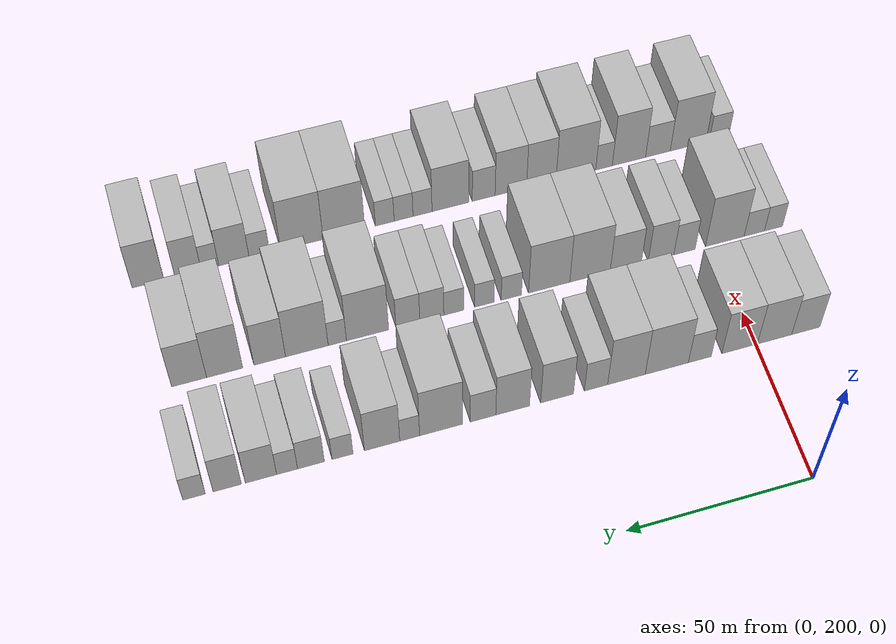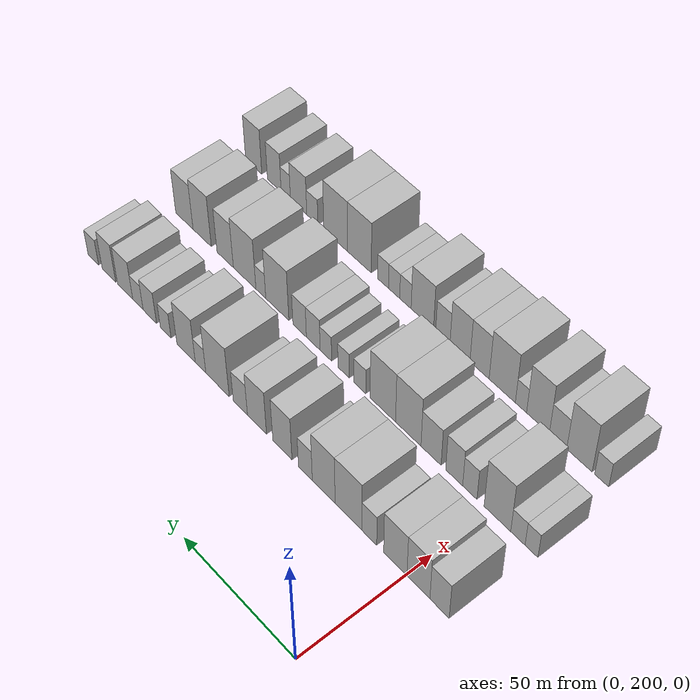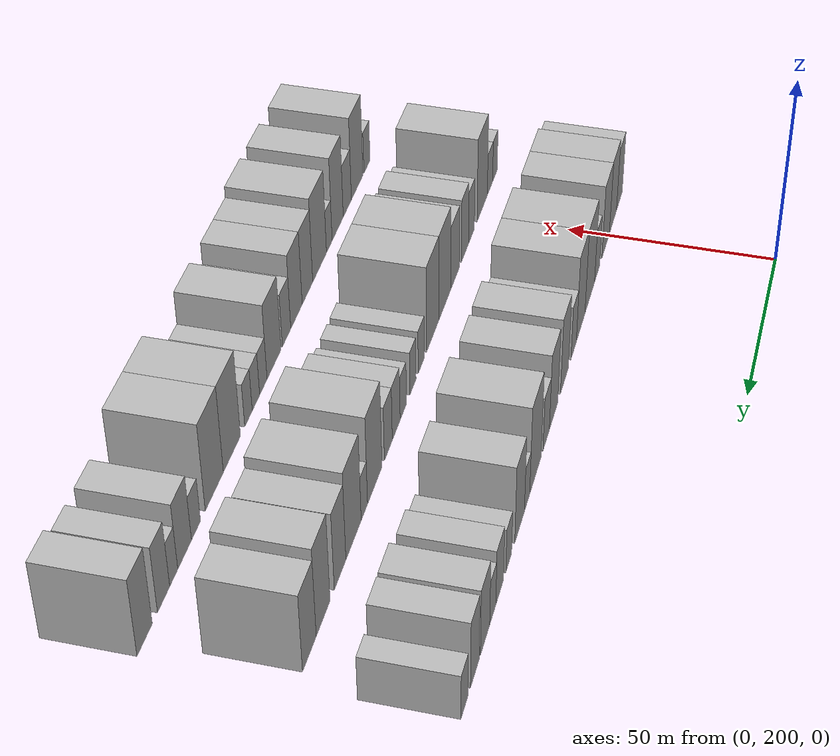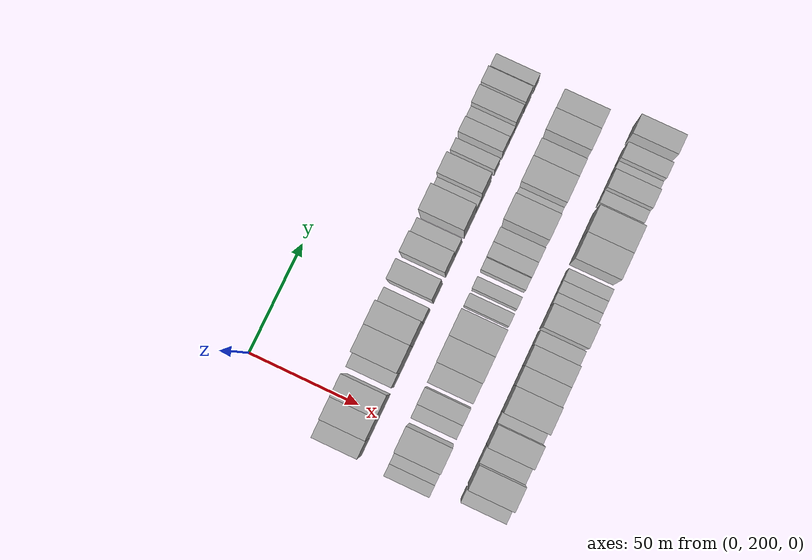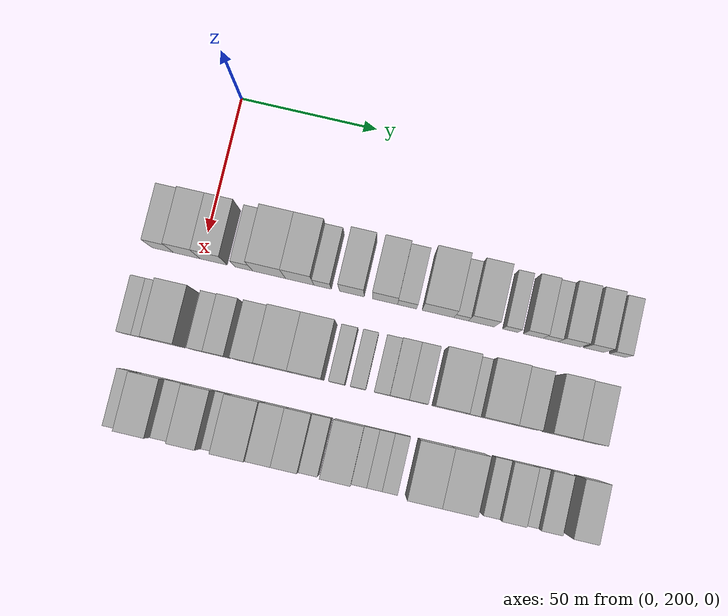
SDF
<sdf version="1.6">
 <world name="default">
  <model name="building_62">
   <static>1</static>
   <pose>50.0000 185.9678 0 0.000000 0.000000 0.000000</pose>
   <link name="link">
    <pose>0 0 9.00 0 0 0</pose>
    <collision name="collision"><geometry><box><size>20.0000 7.9779 18.0000</size></box></geometry></collision>
    <visual name="visual">
     <cast_shadows>0</cast_shadows>
     <geometry><box><size>20.0000 7.9779 18.0000</size></box></geometry>
     <material>
      <script>
       <uri>model://HANNAS_wall/materials/scripts</uri>
       <uri>model://HANNAS_wall/materials/textures</uri>
       <name>vrc/HANNAS_wall</name>
      </script>
     </material>
    </visual>
   </link>
  </model>
  <model name="building_63">
   <static>1</static>
   <pose>50.0000 194.7788 0 0.000000 0.000000 0.000000</pose>
   <link name="link">
    <pose>0 0 10.50 0 0 0</pose>
    <collision name="collision"><geometry><box><size>20.0000 9.6440 21.0000</size></box></geometry></collision>
    <visual name="visual">
     <cast_shadows>0</cast_shadows>
     <geometry><box><size>20.0000 9.6440 21.0000</size></box></geometry>
     <material>
      <script>
       <uri>model://HANNAS_wall/materials/scripts</uri>
       <uri>model://HANNAS_wall/materials/textures</uri>
       <name>vrc/HANNAS_wall</name>
      </script>
     </material>
    </visual>
   </link>
  </model>
  <model name="building_64">
   <static>1</static>
   <pose>50.0000 204.5723 0 0.000000 0.000000 0.000000</pose>
   <link name="link">
    <pose>0 0 10.50 0 0 0</pose>
    <collision name="collision"><geometry><box><size>20.0000 9.9431 21.0000</size></box></geometry></collision>
    <visual name="visual">
     <cast_shadows>0</cast_shadows>
     <geometry><box><size>20.0000 9.9431 21.0000</size></box></geometry>
     <material>
      <script>
       <uri>model://HANNAS_wall/materials/scripts</uri>
       <uri>model://HANNAS_wall/materials/textures</uri>
       <name>vrc/HANNAS_wall</name>
      </script>
     </material>
    </visual>
   </link>
  </model>
  <model name="building_65">
   <static>1</static>
   <pose>50.0000 215.7253 0 0.000000 0.000000 0.000000</pose>
   <link name="link">
    <pose>0 0 7.50 0 0 0</pose>
    <collision name="collision"><geometry><box><size>20.0000 6.3628 15.0000</size></box></geometry></collision>
    <visual name="visual">
     <cast_shadows>0</cast_shadows>
     <geometry><box><size>20.0000 6.3628 15.0000</size></box></geometry>
     <material>
      <script>
       <uri>model://HANNAS_wall/materials/scripts</uri>
       <uri>model://HANNAS_wall/materials/textures</uri>
       <name>vrc/HANNAS_wall</name>
      </script>
     </material>
    </visual>
   </link>
  </model>
  <model name="building_66">
   <static>1</static>
   <pose>50.0000 224.8831 0 0.000000 0.000000 0.000000</pose>
   <link name="link">
    <pose>0 0 12.00 0 0 0</pose>
    <collision name="collision"><geometry><box><size>20.0000 11.9528 24.0000</size></box></geometry></collision>
    <visual name="visual">
     <cast_shadows>0</cast_shadows>
     <geometry><box><size>20.0000 11.9528 24.0000</size></box></geometry>
     <material>
      <script>
       <uri>model://HANNAS_wall/materials/scripts</uri>
       <uri>model://HANNAS_wall/materials/textures</uri>
       <name>vrc/HANNAS_wall</name>
      </script>
     </material>
    </visual>
   </link>
  </model>
  <model name="building_67">
   <static>1</static>
   <pose>50.0000 236.0277 0 0.000000 0.000000 0.000000</pose>
   <link name="link">
    <pose>0 0 12.00 0 0 0</pose>
    <collision name="collision"><geometry><box><size>20.0000 10.3364 24.0000</size></box></geometry></collision>
    <visual name="visual">
     <cast_shadows>0</cast_shadows>
     <geometry><box><size>20.0000 10.3364 24.0000</size></box></geometry>
     <material>
      <script>
       <uri>model://HANNAS_wall/materials/scripts</uri>
       <uri>model://HANNAS_wall/materials/textures</uri>
       <name>vrc/HANNAS_wall</name>
      </script>
     </material>
    </visual>
   </link>
  </model>
  <model name="building_68">
   <static>1</static>
   <pose>50.0000 244.3771 0 0.000000 0.000000 0.000000</pose>
   <link name="link">
    <pose>0 0 7.50 0 0 0</pose>
    <collision name="collision"><geometry><box><size>20.0000 6.3625 15.0000</size></box></geometry></collision>
    <visual name="visual">
     <cast_shadows>0</cast_shadows>
     <geometry><box><size>20.0000 6.3625 15.0000</size></box></geometry>
     <material>
      <script>
       <uri>model://HANNAS_wall/materials/scripts</uri>
       <uri>model://HANNAS_wall/materials/textures</uri>
       <name>vrc/HANNAS_wall</name>
      </script>
     </material>
    </visual>
   </link>
  </model>
  <model name="building_69">
   <static>1</static>
   <pose>50.0000 255.0346 0 0.000000 0.000000 0.000000</pose>
   <link name="link">
    <pose>0 0 10.50 0 0 0</pose>
    <collision name="collision"><geometry><box><size>20.0000 8.9523 21.0000</size></box></geometry></collision>
    <visual name="visual">
     <cast_shadows>0</cast_shadows>
     <geometry><box><size>20.0000 8.9523 21.0000</size></box></geometry>
     <material>
      <script>
       <uri>model://HANNAS_wall/materials/scripts</uri>
       <uri>model://HANNAS_wall/materials/textures</uri>
       <name>vrc/HANNAS_wall</name>
      </script>
     </material>
    </visual>
   </link>
  </model>
  <model name="building_70">
   <static>1</static>
   <pose>50.0000 267.0663 0 0.000000 0.000000 0.000000</pose>
   <link name="link">
    <pose>0 0 10.50 0 0 0</pose>
    <collision name="collision"><geometry><box><size>20.0000 9.1111 21.0000</size></box></geometry></collision>
    <visual name="visual">
     <cast_shadows>0</cast_shadows>
     <geometry><box><size>20.0000 9.1111 21.0000</size></box></geometry>
     <material>
      <script>
       <uri>model://HANNAS_wall/materials/scripts</uri>
       <uri>model://HANNAS_wall/materials/textures</uri>
       <name>vrc/HANNAS_wall</name>
      </script>
     </material>
    </visual>
   </link>
  </model>
  <model name="building_71">
   <static>1</static>
   <pose>50.0000 275.0531 0 0.000000 0.000000 0.000000</pose>
   <link name="link">
    <pose>0 0 7.50 0 0 0</pose>
    <collision name="collision"><geometry><box><size>20.0000 6.8625 15.0000</size></box></geometry></collision>
    <visual name="visual">
     <cast_shadows>0</cast_shadows>
     <geometry><box><size>20.0000 6.8625 15.0000</size></box></geometry>
     <material>
      <script>
       <uri>model://HANNAS_wall/materials/scripts</uri>
       <uri>model://HANNAS_wall/materials/textures</uri>
       <name>vrc/HANNAS_wall</name>
      </script>
     </material>
    </visual>
   </link>
  </model>
  <model name="building_72">
   <static>1</static>
   <pose>50.0000 286.2533 0 0.000000 0.000000 0.000000</pose>
   <link name="link">
    <pose>0 0 12.00 0 0 0</pose>
    <collision name="collision"><geometry><box><size>20.0000 11.5379 24.0000</size></box></geometry></collision>
    <visual name="visual">
     <cast_shadows>0</cast_shadows>
     <geometry><box><size>20.0000 11.5379 24.0000</size></box></geometry>
     <material>
      <script>
       <uri>model://HANNAS_wall/materials/scripts</uri>
       <uri>model://HANNAS_wall/materials/textures</uri>
       <name>vrc/HANNAS_wall</name>
      </script>
     </material>
    </visual>
   </link>
  </model>
  <model name="building_73">
   <static>1</static>
   <pose>50.0000 294.6577 0 0.000000 0.000000 0.000000</pose>
   <link name="link">
    <pose>0 0 6.00 0 0 0</pose>
    <collision name="collision"><geometry><box><size>20.0000 5.2709 12.0000</size></box></geometry></collision>
    <visual name="visual">
     <cast_shadows>0</cast_shadows>
     <geometry><box><size>20.0000 5.2709 12.0000</size></box></geometry>
     <material>
      <script>
       <uri>model://HANNAS_wall/materials/scripts</uri>
       <uri>model://HANNAS_wall/materials/textures</uri>
       <name>vrc/HANNAS_wall</name>
      </script>
     </material>
    </visual>
   </link>
  </model>
  <model name="building_74">
   <static>1</static>
   <pose>50.0000 301.9793 0 0.000000 0.000000 0.000000</pose>
   <link name="link">
    <pose>0 0 10.50 0 0 0</pose>
    <collision name="collision"><geometry><box><size>20.0000 9.3724 21.0000</size></box></geometry></collision>
    <visual name="visual">
     <cast_shadows>0</cast_shadows>
     <geometry><box><size>20.0000 9.3724 21.0000</size></box></geometry>
     <material>
      <script>
       <uri>model://HANNAS_wall/materials/scripts</uri>
       <uri>model://HANNAS_wall/materials/textures</uri>
       <name>vrc/HANNAS_wall</name>
      </script>
     </material>
    </visual>
   </link>
  </model>
  <model name="building_75">
   <static>1</static>
   <pose>50.0000 312.4241 0 0.000000 0.000000 0.000000</pose>
   <link name="link">
    <pose>0 0 6.00 0 0 0</pose>
    <collision name="collision"><geometry><box><size>20.0000 5.5172 12.0000</size></box></geometry></collision>
    <visual name="visual">
     <cast_shadows>0</cast_shadows>
     <geometry><box><size>20.0000 5.5172 12.0000</size></box></geometry>
     <material>
      <script>
       <uri>model://HANNAS_wall/materials/scripts</uri>
       <uri>model://HANNAS_wall/materials/textures</uri>
       <name>vrc/HANNAS_wall</name>
      </script>
     </material>
    </visual>
   </link>
  </model>
  <model name="building_76">
   <static>1</static>
   <pose>50.0000 320.6910 0 0.000000 0.000000 0.000000</pose>
   <link name="link">
    <pose>0 0 7.50 0 0 0</pose>
    <collision name="collision"><geometry><box><size>20.0000 7.0168 15.0000</size></box></geometry></collision>
    <visual name="visual">
     <cast_shadows>0</cast_shadows>
     <geometry><box><size>20.0000 7.0168 15.0000</size></box></geometry>
     <material>
      <script>
       <uri>model://HANNAS_wall/materials/scripts</uri>
       <uri>model://HANNAS_wall/materials/textures</uri>
       <name>vrc/HANNAS_wall</name>
      </script>
     </material>
    </visual>
   </link>
  </model>
  <model name="building_77">
   <static>1</static>
   <pose>50.0000 326.9324 0 0.000000 0.000000 0.000000</pose>
   <link name="link">
    <pose>0 0 6.00 0 0 0</pose>
    <collision name="collision"><geometry><box><size>20.0000 5.4659 12.0000</size></box></geometry></collision>
    <visual name="visual">
     <cast_shadows>0</cast_shadows>
     <geometry><box><size>20.0000 5.4659 12.0000</size></box></geometry>
     <material>
      <script>
       <uri>model://HANNAS_wall/materials/scripts</uri>
       <uri>model://HANNAS_wall/materials/textures</uri>
       <name>vrc/HANNAS_wall</name>
      </script>
     </material>
    </visual>
   </link>
  </model>
  <model name="building_78">
   <static>1</static>
   <pose>50.0000 333.7338 0 0.000000 0.000000 0.000000</pose>
   <link name="link">
    <pose>0 0 9.00 0 0 0</pose>
    <collision name="collision"><geometry><box><size>20.0000 8.1369 18.0000</size></box></geometry></collision>
    <visual name="visual">
     <cast_shadows>0</cast_shadows>
     <geometry><box><size>20.0000 8.1369 18.0000</size></box></geometry>
     <material>
      <script>
       <uri>model://HANNAS_wall/materials/scripts</uri>
       <uri>model://HANNAS_wall/materials/textures</uri>
       <name>vrc/HANNAS_wall</name>
      </script>
     </material>
    </visual>
   </link>
  </model>
  <model name="building_79">
   <static>1</static>
   <pose>50.0000 342.4698 0 0.000000 0.000000 0.000000</pose>
   <link name="link">
    <pose>0 0 9.00 0 0 0</pose>
    <collision name="collision"><geometry><box><size>20.0000 7.3350 18.0000</size></box></geometry></collision>
    <visual name="visual">
     <cast_shadows>0</cast_shadows>
     <geometry><box><size>20.0000 7.3350 18.0000</size></box></geometry>
     <material>
      <script>
       <uri>model://HANNAS_wall/materials/scripts</uri>
       <uri>model://HANNAS_wall/materials/textures</uri>
       <name>vrc/HANNAS_wall</name>
      </script>
     </material>
    </visual>
   </link>
  </model>
  <model name="building_80">
   <static>1</static>
   <pose>50.0000 351.0339 0 0.000000 0.000000 0.000000</pose>
   <link name="link">
    <pose>0 0 6.00 0 0 0</pose>
    <collision name="collision"><geometry><box><size>20.0000 5.7931 12.0000</size></box></geometry></collision>
    <visual name="visual">
     <cast_shadows>0</cast_shadows>
     <geometry><box><size>20.0000 5.7931 12.0000</size></box></geometry>
     <material>
      <script>
       <uri>model://HANNAS_wall/materials/scripts</uri>
       <uri>model://HANNAS_wall/materials/textures</uri>
       <name>vrc/HANNAS_wall</name>
      </script>
     </material>
    </visual>
   </link>
  </model>
  <model name="building_138">
   <static>1</static>
   <pose>82.0000 182.5550 0 0.000000 0.000000 0.000000</pose>
   <link name="link">
    <pose>0 0 6.00 0 0 0</pose>
    <collision name="collision"><geometry><box><size>20.0000 5.2602 12.0000</size></box></geometry></collision>
    <visual name="visual">
     <cast_shadows>0</cast_shadows>
     <geometry><box><size>20.0000 5.2602 12.0000</size></box></geometry>
     <material>
      <script>
       <uri>model://HANNAS_wall/materials/scripts</uri>
       <uri>model://HANNAS_wall/materials/textures</uri>
       <name>vrc/HANNAS_wall</name>
      </script>
     </material>
    </visual>
   </link>
  </model>
  <model name="building_139">
   <static>1</static>
   <pose>82.0000 188.1379 0 0.000000 0.000000 0.000000</pose>
   <link name="link">
    <pose>0 0 6.00 0 0 0</pose>
    <collision name="collision"><geometry><box><size>20.0000 5.9056 12.0000</size></box></geometry></collision>
    <visual name="visual">
     <cast_shadows>0</cast_shadows>
     <geometry><box><size>20.0000 5.9056 12.0000</size></box></geometry>
     <material>
      <script>
       <uri>model://HANNAS_wall/materials/scripts</uri>
       <uri>model://HANNAS_wall/materials/textures</uri>
       <name>vrc/HANNAS_wall</name>
      </script>
     </material>
    </visual>
   </link>
  </model>
  <model name="building_140">
   <static>1</static>
   <pose>82.0000 196.6702 0 0.000000 0.000000 0.000000</pose>
   <link name="link">
    <pose>0 0 12.00 0 0 0</pose>
    <collision name="collision"><geometry><box><size>20.0000 11.1590 24.0000</size></box></geometry></collision>
    <visual name="visual">
     <cast_shadows>0</cast_shadows>
     <geometry><box><size>20.0000 11.1590 24.0000</size></box></geometry>
     <material>
      <script>
       <uri>model://HANNAS_wall/materials/scripts</uri>
       <uri>model://HANNAS_wall/materials/textures</uri>
       <name>vrc/HANNAS_wall</name>
      </script>
     </material>
    </visual>
   </link>
  </model>
  <model name="building_141">
   <static>1</static>
   <pose>82.0000 208.3032 0 0.000000 0.000000 0.000000</pose>
   <link name="link">
    <pose>0 0 7.50 0 0 0</pose>
    <collision name="collision"><geometry><box><size>20.0000 6.1069 15.0000</size></box></geometry></collision>
    <visual name="visual">
     <cast_shadows>0</cast_shadows>
     <geometry><box><size>20.0000 6.1069 15.0000</size></box></geometry>
     <material>
      <script>
       <uri>model://HANNAS_wall/materials/scripts</uri>
       <uri>model://HANNAS_wall/materials/textures</uri>
       <name>vrc/HANNAS_wall</name>
      </script>
     </material>
    </visual>
   </link>
  </model>
  <model name="building_142">
   <static>1</static>
   <pose>82.0000 215.0246 0 0.000000 0.000000 0.000000</pose>
   <link name="link">
    <pose>0 0 9.00 0 0 0</pose>
    <collision name="collision"><geometry><box><size>20.0000 7.3360 18.0000</size></box></geometry></collision>
    <visual name="visual">
     <cast_shadows>0</cast_shadows>
     <geometry><box><size>20.0000 7.3360 18.0000</size></box></geometry>
     <material>
      <script>
       <uri>model://HANNAS_wall/materials/scripts</uri>
       <uri>model://HANNAS_wall/materials/textures</uri>
       <name>vrc/HANNAS_wall</name>
      </script>
     </material>
    </visual>
   </link>
  </model>
  <model name="building_143">
   <static>1</static>
   <pose>82.0000 225.1126 0 0.000000 0.000000 0.000000</pose>
   <link name="link">
    <pose>0 0 9.00 0 0 0</pose>
    <collision name="collision"><geometry><box><size>20.0000 8.8400 18.0000</size></box></geometry></collision>
    <visual name="visual">
     <cast_shadows>0</cast_shadows>
     <geometry><box><size>20.0000 8.8400 18.0000</size></box></geometry>
     <material>
      <script>
       <uri>model://HANNAS_wall/materials/scripts</uri>
       <uri>model://HANNAS_wall/materials/textures</uri>
       <name>vrc/HANNAS_wall</name>
      </script>
     </material>
    </visual>
   </link>
  </model>
  <model name="building_144">
   <static>1</static>
   <pose>82.0000 235.2443 0 0.000000 0.000000 0.000000</pose>
   <link name="link">
    <pose>0 0 12.00 0 0 0</pose>
    <collision name="collision"><geometry><box><size>20.0000 11.4233 24.0000</size></box></geometry></collision>
    <visual name="visual">
     <cast_shadows>0</cast_shadows>
     <geometry><box><size>20.0000 11.4233 24.0000</size></box></geometry>
     <material>
      <script>
       <uri>model://HANNAS_wall/materials/scripts</uri>
       <uri>model://HANNAS_wall/materials/textures</uri>
       <name>vrc/HANNAS_wall</name>
      </script>
     </material>
    </visual>
   </link>
  </model>
  <model name="building_145">
   <static>1</static>
   <pose>82.0000 246.7491 0 0.000000 0.000000 0.000000</pose>
   <link name="link">
    <pose>0 0 12.00 0 0 0</pose>
    <collision name="collision"><geometry><box><size>20.0000 11.5862 24.0000</size></box></geometry></collision>
    <visual name="visual">
     <cast_shadows>0</cast_shadows>
     <geometry><box><size>20.0000 11.5862 24.0000</size></box></geometry>
     <material>
      <script>
       <uri>model://HANNAS_wall/materials/scripts</uri>
       <uri>model://HANNAS_wall/materials/textures</uri>
       <name>vrc/HANNAS_wall</name>
      </script>
     </material>
    </visual>
   </link>
  </model>
  <model name="building_146">
   <static>1</static>
   <pose>82.0000 257.3746 0 0.000000 0.000000 0.000000</pose>
   <link name="link">
    <pose>0 0 6.00 0 0 0</pose>
    <collision name="collision"><geometry><box><size>20.0000 5.6648 12.0000</size></box></geometry></collision>
    <visual name="visual">
     <cast_shadows>0</cast_shadows>
     <geometry><box><size>20.0000 5.6648 12.0000</size></box></geometry>
     <material>
      <script>
       <uri>model://HANNAS_wall/materials/scripts</uri>
       <uri>model://HANNAS_wall/materials/textures</uri>
       <name>vrc/HANNAS_wall</name>
      </script>
     </material>
    </visual>
   </link>
  </model>
  <model name="building_147">
   <static>1</static>
   <pose>82.0000 264.8979 0 0.000000 0.000000 0.000000</pose>
   <link name="link">
    <pose>0 0 6.00 0 0 0</pose>
    <collision name="collision"><geometry><box><size>20.0000 5.3818 12.0000</size></box></geometry></collision>
    <visual name="visual">
     <cast_shadows>0</cast_shadows>
     <geometry><box><size>20.0000 5.3818 12.0000</size></box></geometry>
     <material>
      <script>
       <uri>model://HANNAS_wall/materials/scripts</uri>
       <uri>model://HANNAS_wall/materials/textures</uri>
       <name>vrc/HANNAS_wall</name>
      </script>
     </material>
    </visual>
   </link>
  </model>
  <model name="building_148">
   <static>1</static>
   <pose>82.0000 273.3419 0 0.000000 0.000000 0.000000</pose>
   <link name="link">
    <pose>0 0 6.00 0 0 0</pose>
    <collision name="collision"><geometry><box><size>20.0000 5.5061 12.0000</size></box></geometry></collision>
    <visual name="visual">
     <cast_shadows>0</cast_shadows>
     <geometry><box><size>20.0000 5.5061 12.0000</size></box></geometry>
     <material>
      <script>
       <uri>model://HANNAS_wall/materials/scripts</uri>
       <uri>model://HANNAS_wall/materials/textures</uri>
       <name>vrc/HANNAS_wall</name>
      </script>
     </material>
    </visual>
   </link>
  </model>
  <model name="building_149">
   <static>1</static>
   <pose>82.0000 279.4212 0 0.000000 0.000000 0.000000</pose>
   <link name="link">
    <pose>0 0 7.50 0 0 0</pose>
    <collision name="collision"><geometry><box><size>20.0000 6.6526 15.0000</size></box></geometry></collision>
    <visual name="visual">
     <cast_shadows>0</cast_shadows>
     <geometry><box><size>20.0000 6.6526 15.0000</size></box></geometry>
     <material>
      <script>
       <uri>model://HANNAS_wall/materials/scripts</uri>
       <uri>model://HANNAS_wall/materials/textures</uri>
       <name>vrc/HANNAS_wall</name>
      </script>
     </material>
    </visual>
   </link>
  </model>
  <model name="building_150">
   <static>1</static>
   <pose>82.0000 286.0291 0 0.000000 0.000000 0.000000</pose>
   <link name="link">
    <pose>0 0 7.50 0 0 0</pose>
    <collision name="collision"><geometry><box><size>20.0000 6.5633 15.0000</size></box></geometry></collision>
    <visual name="visual">
     <cast_shadows>0</cast_shadows>
     <geometry><box><size>20.0000 6.5633 15.0000</size></box></geometry>
     <material>
      <script>
       <uri>model://HANNAS_wall/materials/scripts</uri>
       <uri>model://HANNAS_wall/materials/textures</uri>
       <name>vrc/HANNAS_wall</name>
      </script>
     </material>
    </visual>
   </link>
  </model>
  <model name="building_151">
   <static>1</static>
   <pose>82.0000 297.0603 0 0.000000 0.000000 0.000000</pose>
   <link name="link">
    <pose>0 0 12.00 0 0 0</pose>
    <collision name="collision"><geometry><box><size>20.0000 11.4991 24.0000</size></box></geometry></collision>
    <visual name="visual">
     <cast_shadows>0</cast_shadows>
     <geometry><box><size>20.0000 11.4991 24.0000</size></box></geometry>
     <material>
      <script>
       <uri>model://HANNAS_wall/materials/scripts</uri>
       <uri>model://HANNAS_wall/materials/textures</uri>
       <name>vrc/HANNAS_wall</name>
      </script>
     </material>
    </visual>
   </link>
  </model>
  <model name="building_152">
   <static>1</static>
   <pose>82.0000 305.2937 0 0.000000 0.000000 0.000000</pose>
   <link name="link">
    <pose>0 0 6.00 0 0 0</pose>
    <collision name="collision"><geometry><box><size>20.0000 4.9678 12.0000</size></box></geometry></collision>
    <visual name="visual">
     <cast_shadows>0</cast_shadows>
     <geometry><box><size>20.0000 4.9678 12.0000</size></box></geometry>
     <material>
      <script>
       <uri>model://HANNAS_wall/materials/scripts</uri>
       <uri>model://HANNAS_wall/materials/textures</uri>
       <name>vrc/HANNAS_wall</name>
      </script>
     </material>
    </visual>
   </link>
  </model>
  <model name="building_153">
   <static>1</static>
   <pose>82.0000 313.5528 0 0.000000 0.000000 0.000000</pose>
   <link name="link">
    <pose>0 0 12.00 0 0 0</pose>
    <collision name="collision"><geometry><box><size>20.0000 11.5504 24.0000</size></box></geometry></collision>
    <visual name="visual">
     <cast_shadows>0</cast_shadows>
     <geometry><box><size>20.0000 11.5504 24.0000</size></box></geometry>
     <material>
      <script>
       <uri>model://HANNAS_wall/materials/scripts</uri>
       <uri>model://HANNAS_wall/materials/textures</uri>
       <name>vrc/HANNAS_wall</name>
      </script>
     </material>
    </visual>
   </link>
  </model>
  <model name="building_154">
   <static>1</static>
   <pose>82.0000 323.5786 0 0.000000 0.000000 0.000000</pose>
   <link name="link">
    <pose>0 0 10.50 0 0 0</pose>
    <collision name="collision"><geometry><box><size>20.0000 8.5012 21.0000</size></box></geometry></collision>
    <visual name="visual">
     <cast_shadows>0</cast_shadows>
     <geometry><box><size>20.0000 8.5012 21.0000</size></box></geometry>
     <material>
      <script>
       <uri>model://HANNAS_wall/materials/scripts</uri>
       <uri>model://HANNAS_wall/materials/textures</uri>
       <name>vrc/HANNAS_wall</name>
      </script>
     </material>
    </visual>
   </link>
  </model>
  <model name="building_155">
   <static>1</static>
   <pose>82.0000 335.6665 0 0.000000 0.000000 0.000000</pose>
   <link name="link">
    <pose>0 0 12.00 0 0 0</pose>
    <collision name="collision"><geometry><box><size>20.0000 9.6745 24.0000</size></box></geometry></collision>
    <visual name="visual">
     <cast_shadows>0</cast_shadows>
     <geometry><box><size>20.0000 9.6745 24.0000</size></box></geometry>
     <material>
      <script>
       <uri>model://HANNAS_wall/materials/scripts</uri>
       <uri>model://HANNAS_wall/materials/textures</uri>
       <name>vrc/HANNAS_wall</name>
      </script>
     </material>
    </visual>
   </link>
  </model>
  <model name="building_156">
   <static>1</static>
   <pose>82.0000 345.1514 0 0.000000 0.000000 0.000000</pose>
   <link name="link">
    <pose>0 0 10.50 0 0 0</pose>
    <collision name="collision"><geometry><box><size>20.0000 9.2952 21.0000</size></box></geometry></collision>
    <visual name="visual">
     <cast_shadows>0</cast_shadows>
     <geometry><box><size>20.0000 9.2952 21.0000</size></box></geometry>
     <material>
      <script>
       <uri>model://HANNAS_wall/materials/scripts</uri>
       <uri>model://HANNAS_wall/materials/textures</uri>
       <name>vrc/HANNAS_wall</name>
      </script>
     </material>
    </visual>
   </link>
  </model>
  <model name="building_213">
   <static>1</static>
   <pose>114.0000 186.3733 0 0.000000 0.000000 0.000000</pose>
   <link name="link">
    <pose>0 0 6.00 0 0 0</pose>
    <collision name="collision"><geometry><box><size>20.0000 5.7891 12.0000</size></box></geometry></collision>
    <visual name="visual">
     <cast_shadows>0</cast_shadows>
     <geometry><box><size>20.0000 5.7891 12.0000</size></box></geometry>
     <material>
      <script>
       <uri>model://HANNAS_wall/materials/scripts</uri>
       <uri>model://HANNAS_wall/materials/textures</uri>
       <name>vrc/HANNAS_wall</name>
      </script>
     </material>
    </visual>
   </link>
  </model>
  <model name="building_214">
   <static>1</static>
   <pose>114.0000 195.5550 0 0.000000 0.000000 0.000000</pose>
   <link name="link">
    <pose>0 0 12.00 0 0 0</pose>
    <collision name="collision"><geometry><box><size>20.0000 10.5743 24.0000</size></box></geometry></collision>
    <visual name="visual">
     <cast_shadows>0</cast_shadows>
     <geometry><box><size>20.0000 10.5743 24.0000</size></box></geometry>
     <material>
      <script>
       <uri>model://HANNAS_wall/materials/scripts</uri>
       <uri>model://HANNAS_wall/materials/textures</uri>
       <name>vrc/HANNAS_wall</name>
      </script>
     </material>
    </visual>
   </link>
  </model>
  <model name="building_215">
   <static>1</static>
   <pose>114.0000 204.4991 0 0.000000 0.000000 0.000000</pose>
   <link name="link">
    <pose>0 0 7.50 0 0 0</pose>
    <collision name="collision"><geometry><box><size>20.0000 7.3139 15.0000</size></box></geometry></collision>
    <visual name="visual">
     <cast_shadows>0</cast_shadows>
     <geometry><box><size>20.0000 7.3139 15.0000</size></box></geometry>
     <material>
      <script>
       <uri>model://HANNAS_wall/materials/scripts</uri>
       <uri>model://HANNAS_wall/materials/textures</uri>
       <name>vrc/HANNAS_wall</name>
      </script>
     </material>
    </visual>
   </link>
  </model>
  <model name="building_216">
   <static>1</static>
   <pose>114.0000 213.0432 0 0.000000 0.000000 0.000000</pose>
   <link name="link">
    <pose>0 0 12.00 0 0 0</pose>
    <collision name="collision"><geometry><box><size>20.0000 9.7744 24.0000</size></box></geometry></collision>
    <visual name="visual">
     <cast_shadows>0</cast_shadows>
     <geometry><box><size>20.0000 9.7744 24.0000</size></box></geometry>
     <material>
      <script>
       <uri>model://HANNAS_wall/materials/scripts</uri>
       <uri>model://HANNAS_wall/materials/textures</uri>
       <name>vrc/HANNAS_wall</name>
      </script>
     </material>
    </visual>
   </link>
  </model>
  <model name="building_217">
   <static>1</static>
   <pose>114.0000 220.3568 0 0.000000 0.000000 0.000000</pose>
   <link name="link">
    <pose>0 0 6.00 0 0 0</pose>
    <collision name="collision"><geometry><box><size>20.0000 4.8528 12.0000</size></box></geometry></collision>
    <visual name="visual">
     <cast_shadows>0</cast_shadows>
     <geometry><box><size>20.0000 4.8528 12.0000</size></box></geometry>
     <material>
      <script>
       <uri>model://HANNAS_wall/materials/scripts</uri>
       <uri>model://HANNAS_wall/materials/textures</uri>
       <name>vrc/HANNAS_wall</name>
      </script>
     </material>
    </visual>
   </link>
  </model>
  <model name="building_218">
   <static>1</static>
   <pose>114.0000 228.5602 0 0.000000 0.000000 0.000000</pose>
   <link name="link">
    <pose>0 0 12.00 0 0 0</pose>
    <collision name="collision"><geometry><box><size>20.0000 11.5541 24.0000</size></box></geometry></collision>
    <visual name="visual">
     <cast_shadows>0</cast_shadows>
     <geometry><box><size>20.0000 11.5541 24.0000</size></box></geometry>
     <material>
      <script>
       <uri>model://HANNAS_wall/materials/scripts</uri>
       <uri>model://HANNAS_wall/materials/textures</uri>
       <name>vrc/HANNAS_wall</name>
      </script>
     </material>
    </visual>
   </link>
  </model>
  <model name="building_219">
   <static>1</static>
   <pose>114.0000 238.6277 0 0.000000 0.000000 0.000000</pose>
   <link name="link">
    <pose>0 0 10.50 0 0 0</pose>
    <collision name="collision"><geometry><box><size>20.0000 8.5809 21.0000</size></box></geometry></collision>
    <visual name="visual">
     <cast_shadows>0</cast_shadows>
     <geometry><box><size>20.0000 8.5809 21.0000</size></box></geometry>
     <material>
      <script>
       <uri>model://HANNAS_wall/materials/scripts</uri>
       <uri>model://HANNAS_wall/materials/textures</uri>
       <name>vrc/HANNAS_wall</name>
      </script>
     </material>
    </visual>
   </link>
  </model>
  <model name="building_220">
   <static>1</static>
   <pose>114.0000 247.4484 0 0.000000 0.000000 0.000000</pose>
   <link name="link">
    <pose>0 0 10.50 0 0 0</pose>
    <collision name="collision"><geometry><box><size>20.0000 9.0604 21.0000</size></box></geometry></collision>
    <visual name="visual">
     <cast_shadows>0</cast_shadows>
     <geometry><box><size>20.0000 9.0604 21.0000</size></box></geometry>
     <material>
      <script>
       <uri>model://HANNAS_wall/materials/scripts</uri>
       <uri>model://HANNAS_wall/materials/textures</uri>
       <name>vrc/HANNAS_wall</name>
      </script>
     </material>
    </visual>
   </link>
  </model>
  <model name="building_221">
   <static>1</static>
   <pose>114.0000 255.2584 0 0.000000 0.000000 0.000000</pose>
   <link name="link">
    <pose>0 0 7.50 0 0 0</pose>
    <collision name="collision"><geometry><box><size>20.0000 6.5596 15.0000</size></box></geometry></collision>
    <visual name="visual">
     <cast_shadows>0</cast_shadows>
     <geometry><box><size>20.0000 6.5596 15.0000</size></box></geometry>
     <material>
      <script>
       <uri>model://HANNAS_wall/materials/scripts</uri>
       <uri>model://HANNAS_wall/materials/textures</uri>
       <name>vrc/HANNAS_wall</name>
      </script>
     </material>
    </visual>
   </link>
  </model>
  <model name="building_222">
   <static>1</static>
   <pose>114.0000 264.7876 0 0.000000 0.000000 0.000000</pose>
   <link name="link">
    <pose>0 0 10.50 0 0 0</pose>
    <collision name="collision"><geometry><box><size>20.0000 10.4988 21.0000</size></box></geometry></collision>
    <visual name="visual">
     <cast_shadows>0</cast_shadows>
     <geometry><box><size>20.0000 10.4988 21.0000</size></box></geometry>
     <material>
      <script>
       <uri>model://HANNAS_wall/materials/scripts</uri>
       <uri>model://HANNAS_wall/materials/textures</uri>
       <name>vrc/HANNAS_wall</name>
      </script>
     </material>
    </visual>
   </link>
  </model>
  <model name="building_223">
   <static>1</static>
   <pose>114.0000 272.7426 0 0.000000 0.000000 0.000000</pose>
   <link name="link">
    <pose>0 0 6.00 0 0 0</pose>
    <collision name="collision"><geometry><box><size>20.0000 5.4113 12.0000</size></box></geometry></collision>
    <visual name="visual">
     <cast_shadows>0</cast_shadows>
     <geometry><box><size>20.0000 5.4113 12.0000</size></box></geometry>
     <material>
      <script>
       <uri>model://HANNAS_wall/materials/scripts</uri>
       <uri>model://HANNAS_wall/materials/textures</uri>
       <name>vrc/HANNAS_wall</name>
      </script>
     </material>
    </visual>
   </link>
  </model>
  <model name="building_224">
   <static>1</static>
   <pose>114.0000 278.1230 0 0.000000 0.000000 0.000000</pose>
   <link name="link">
    <pose>0 0 6.00 0 0 0</pose>
    <collision name="collision"><geometry><box><size>20.0000 5.3495 12.0000</size></box></geometry></collision>
    <visual name="visual">
     <cast_shadows>0</cast_shadows>
     <geometry><box><size>20.0000 5.3495 12.0000</size></box></geometry>
     <material>
      <script>
       <uri>model://HANNAS_wall/materials/scripts</uri>
       <uri>model://HANNAS_wall/materials/textures</uri>
       <name>vrc/HANNAS_wall</name>
      </script>
     </material>
    </visual>
   </link>
  </model>
  <model name="building_225">
   <static>1</static>
   <pose>114.0000 283.4554 0 0.000000 0.000000 0.000000</pose>
   <link name="link">
    <pose>0 0 6.00 0 0 0</pose>
    <collision name="collision"><geometry><box><size>20.0000 5.3153 12.0000</size></box></geometry></collision>
    <visual name="visual">
     <cast_shadows>0</cast_shadows>
     <geometry><box><size>20.0000 5.3153 12.0000</size></box></geometry>
     <material>
      <script>
       <uri>model://HANNAS_wall/materials/scripts</uri>
       <uri>model://HANNAS_wall/materials/textures</uri>
       <name>vrc/HANNAS_wall</name>
      </script>
     </material>
    </visual>
   </link>
  </model>
  <model name="building_226">
   <static>1</static>
   <pose>114.0000 294.9483 0 0.000000 0.000000 0.000000</pose>
   <link name="link">
    <pose>0 0 12.00 0 0 0</pose>
    <collision name="collision"><geometry><box><size>20.0000 11.6706 24.0000</size></box></geometry></collision>
    <visual name="visual">
     <cast_shadows>0</cast_shadows>
     <geometry><box><size>20.0000 11.6706 24.0000</size></box></geometry>
     <material>
      <script>
       <uri>model://HANNAS_wall/materials/scripts</uri>
       <uri>model://HANNAS_wall/materials/textures</uri>
       <name>vrc/HANNAS_wall</name>
      </script>
     </material>
    </visual>
   </link>
  </model>
  <model name="building_227">
   <static>1</static>
   <pose>114.0000 306.7397 0 0.000000 0.000000 0.000000</pose>
   <link name="link">
    <pose>0 0 12.00 0 0 0</pose>
    <collision name="collision"><geometry><box><size>20.0000 11.9120 24.0000</size></box></geometry></collision>
    <visual name="visual">
     <cast_shadows>0</cast_shadows>
     <geometry><box><size>20.0000 11.9120 24.0000</size></box></geometry>
     <material>
      <script>
       <uri>model://HANNAS_wall/materials/scripts</uri>
       <uri>model://HANNAS_wall/materials/textures</uri>
       <name>vrc/HANNAS_wall</name>
      </script>
     </material>
    </visual>
   </link>
  </model>
  <model name="building_228">
   <static>1</static>
   <pose>114.0000 318.5400 0 0.000000 0.000000 0.000000</pose>
   <link name="link">
    <pose>0 0 6.00 0 0 0</pose>
    <collision name="collision"><geometry><box><size>20.0000 5.6887 12.0000</size></box></geometry></collision>
    <visual name="visual">
     <cast_shadows>0</cast_shadows>
     <geometry><box><size>20.0000 5.6887 12.0000</size></box></geometry>
     <material>
      <script>
       <uri>model://HANNAS_wall/materials/scripts</uri>
       <uri>model://HANNAS_wall/materials/textures</uri>
       <name>vrc/HANNAS_wall</name>
      </script>
     </material>
    </visual>
   </link>
  </model>
  <model name="building_229">
   <static>1</static>
   <pose>114.0000 325.5938 0 0.000000 0.000000 0.000000</pose>
   <link name="link">
    <pose>0 0 9.00 0 0 0</pose>
    <collision name="collision"><geometry><box><size>20.0000 8.4189 18.0000</size></box></geometry></collision>
    <visual name="visual">
     <cast_shadows>0</cast_shadows>
     <geometry><box><size>20.0000 8.4189 18.0000</size></box></geometry>
     <material>
      <script>
       <uri>model://HANNAS_wall/materials/scripts</uri>
       <uri>model://HANNAS_wall/materials/textures</uri>
       <name>vrc/HANNAS_wall</name>
      </script>
     </material>
    </visual>
   </link>
  </model>
  <model name="building_230">
   <static>1</static>
   <pose>114.0000 332.2318 0 0.000000 0.000000 0.000000</pose>
   <link name="link">
    <pose>0 0 6.00 0 0 0</pose>
    <collision name="collision"><geometry><box><size>20.0000 4.8570 12.0000</size></box></geometry></collision>
    <visual name="visual">
     <cast_shadows>0</cast_shadows>
     <geometry><box><size>20.0000 4.8570 12.0000</size></box></geometry>
     <material>
      <script>
       <uri>model://HANNAS_wall/materials/scripts</uri>
       <uri>model://HANNAS_wall/materials/textures</uri>
       <name>vrc/HANNAS_wall</name>
      </script>
     </material>
    </visual>
   </link>
  </model>
  <model name="building_231">
   <static>1</static>
   <pose>114.0000 338.2676 0 0.000000 0.000000 0.000000</pose>
   <link name="link">
    <pose>0 0 9.00 0 0 0</pose>
    <collision name="collision"><geometry><box><size>20.0000 7.2148 18.0000</size></box></geometry></collision>
    <visual name="visual">
     <cast_shadows>0</cast_shadows>
     <geometry><box><size>20.0000 7.2148 18.0000</size></box></geometry>
     <material>
      <script>
       <uri>model://HANNAS_wall/materials/scripts</uri>
       <uri>model://HANNAS_wall/materials/textures</uri>
       <name>vrc/HANNAS_wall</name>
      </script>
     </material>
    </visual>
   </link>
  </model>
  <model name="building_232">
   <static>1</static>
   <pose>114.0000 349.2075 0 0.000000 0.000000 0.000000</pose>
   <link name="link">
    <pose>0 0 10.50 0 0 0</pose>
    <collision name="collision"><geometry><box><size>20.0000 8.6649 21.0000</size></box></geometry></collision>
    <visual name="visual">
     <cast_shadows>0</cast_shadows>
     <geometry><box><size>20.0000 8.6649 21.0000</size></box></geometry>
     <material>
      <script>
       <uri>model://HANNAS_wall/materials/scripts</uri>
       <uri>model://HANNAS_wall/materials/textures</uri>
       <name>vrc/HANNAS_wall</name>
      </script>
     </material>
    </visual>
   </link>
  </model>
 </world>
</sdf>
